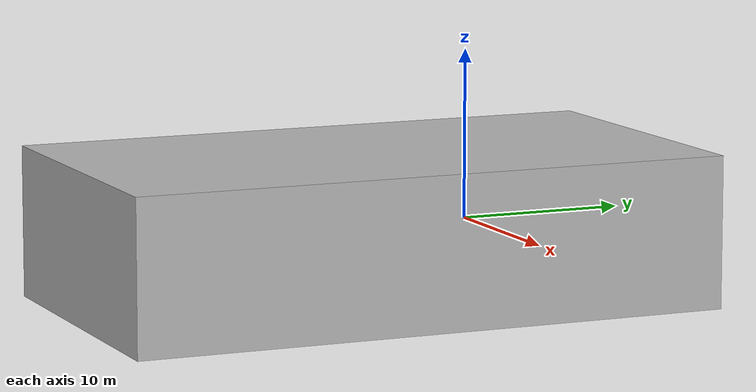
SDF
<?xml version="1.0"?>
<sdf version="1.6">
    <model name="satsop_floor02_tile13">
        <static>true</static>
        <link name="base_link">
            <collision name="collision">
                <pose>0 0 0 0 0 0</pose>
                <geometry>
                    <mesh>
                        <uri>meshes/13.dae</uri>
                        <scale>1.0 1.0 1.0</scale>
                    </mesh>
                </geometry>
            </collision>
            <visual name="visual">
                <geometry>
                    <mesh>
                        <uri>meshes/13.dae</uri>
                    </mesh>
                </geometry>
            </visual>
        </link>
    </model>
</sdf>
